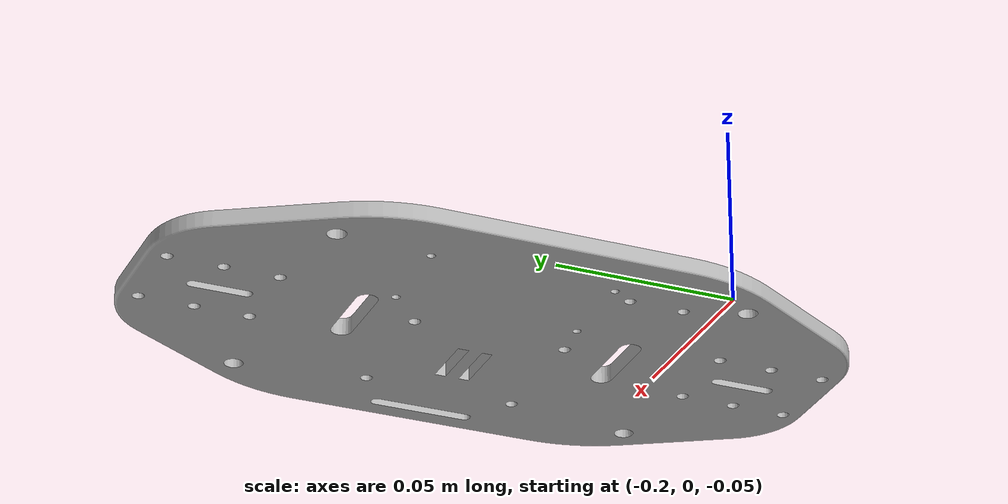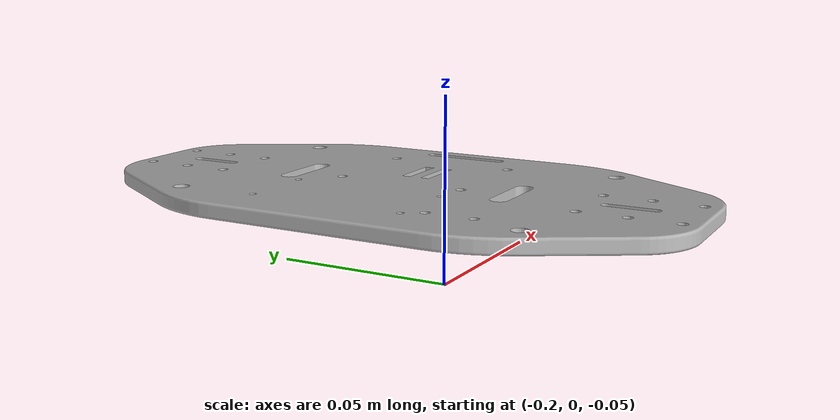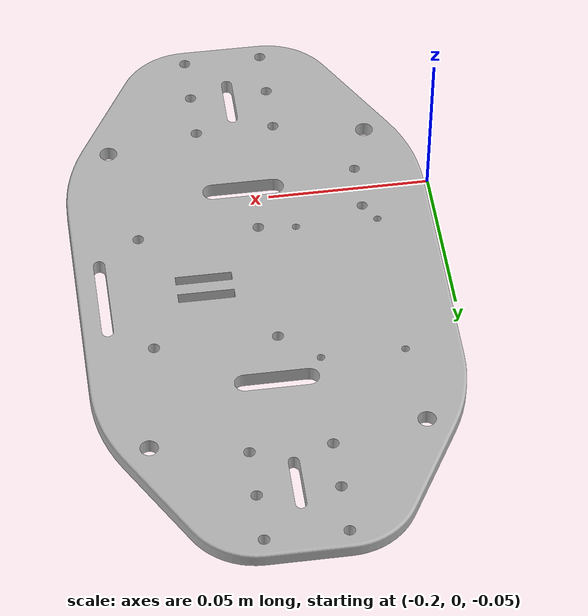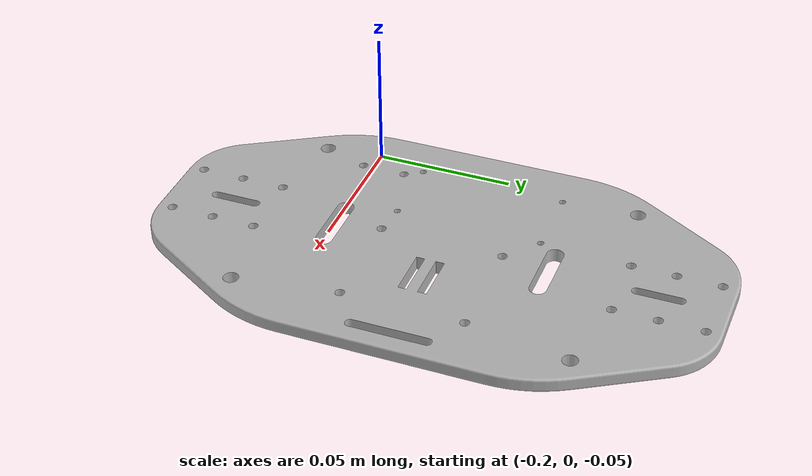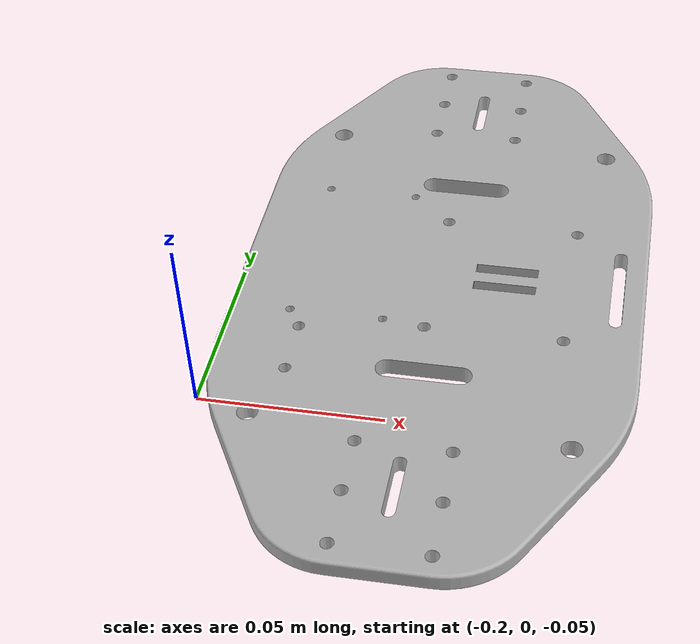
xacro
<?xml version="1.0" ?>
<robot name="self_balancing_robot" xmlns:xacro="http://www.ros.org/wiki/xacro">

<xacro:include filename="$(find self_balancing_robot_description)/urdf/materials.xacro" />
<xacro:include filename="$(find self_balancing_robot_description)/urdf/self_balancing_robot.trans" />
<xacro:include filename="$(find self_balancing_robot_description)/urdf/self_balancing_robot.gazebo" />
<link name="base_link">
  <inertial>
    <origin xyz="-0.14198926540497087 0.04495117648392769 -0.04018148674552322" rpy="0 0 0"/>
    <mass value="0.2683631773960289"/>
    <inertia ixx="0.000728" iyy="0.000227" izz="0.000954" ixy="0.0" iyz="-0.0" ixz="0.0"/>
  </inertial>
  <visual>
    <origin xyz="0 0 0" rpy="0 0 0"/>
    <geometry>
      <mesh filename="file://$(find self_balancing_robot_description)/meshes/base_link.stl" scale="0.001 0.001 0.001"/>
    </geometry>
    <material name="silver"/>
  </visual>
  <collision>
    <origin xyz="0 0 0" rpy="0 0 0"/>
    <geometry>
      <mesh filename="file://$(find self_balancing_robot_description)/meshes/base_link.stl" scale="0.001 0.001 0.001"/>
    </geometry>
  </collision>
</link>

</robot>

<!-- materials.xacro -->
<robot name="self_balancing_robot" xmlns:xacro="http://www.ros.org/wiki/xacro" >

<material name="silver">
  <color rgba="0.700 0.700 0.700 1.000"/>
</material>

</robot>

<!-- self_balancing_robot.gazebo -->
<robot name="self_balancing_robot" xmlns:xacro="http://www.ros.org/wiki/xacro" >

<xacro:property name="body_color" value="Gazebo/Silver" />

<gazebo>
  <plugin name="control" filename="libgazebo_ros_control.so"/>
</gazebo>
<gazebo reference="base_link">
  <material>${body_color}</material>
  <mu1>0.2</mu1>
  <mu2>0.2</mu2>
  <self_collide>true</self_collide>
  <gravity>true</gravity>
</gazebo>

</robot>
